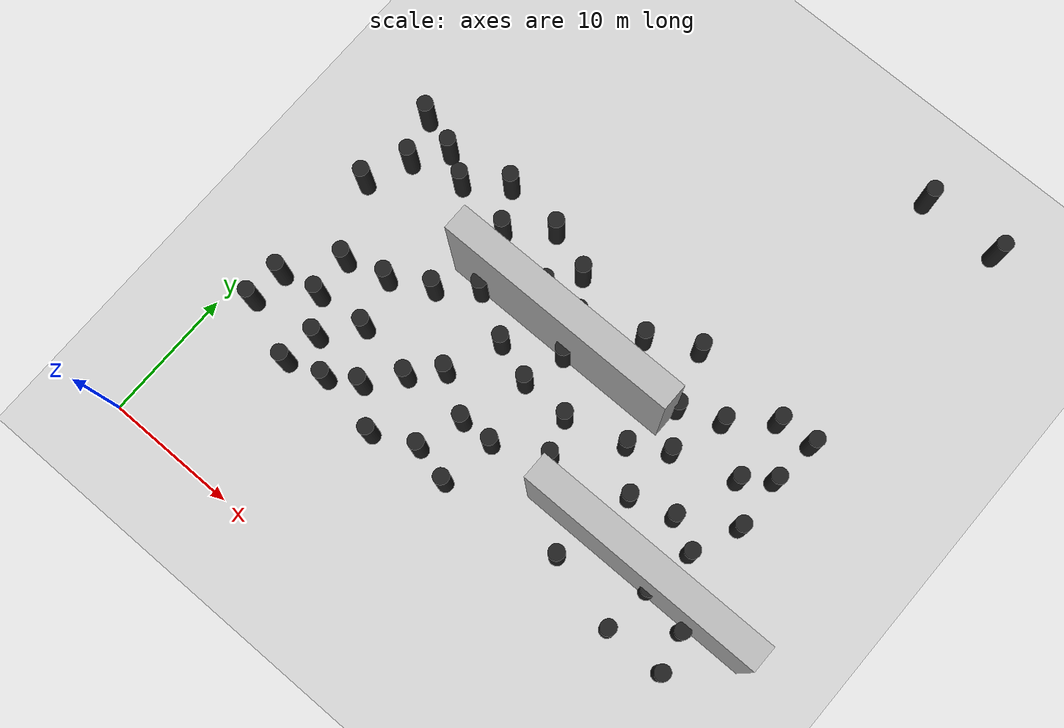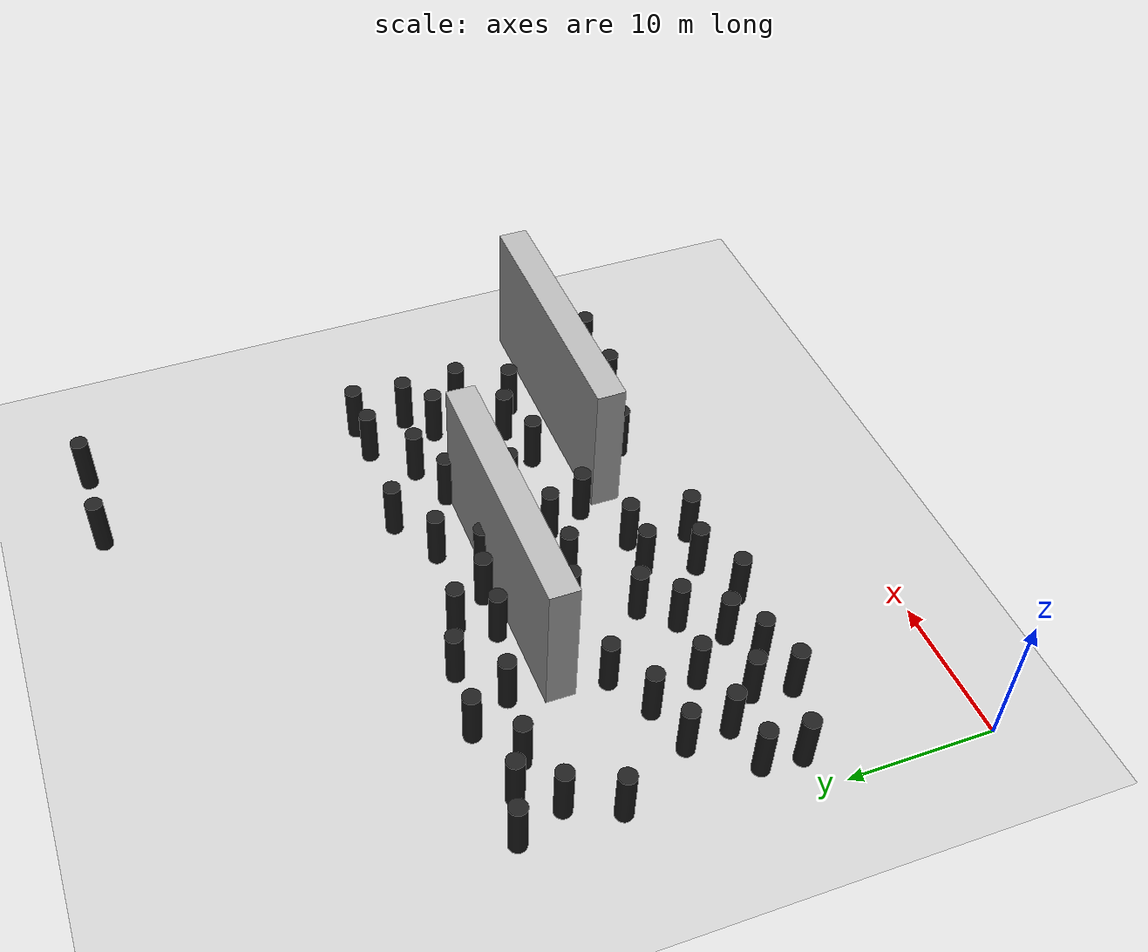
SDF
<sdf version="1.7">
 <world name="default">
  <model name="ground_plane">
   <pose>20 20 0 0 -0 0</pose>
   <static>1</static>
   <link name="link">
    <collision name="collision">
     <geometry><plane><normal>0 0 1</normal><size>200 200</size></plane></geometry>
     <surface><friction><ode><mu>100</mu><mu2>50</mu2></ode></friction></surface>
    </collision>
    <visual name="visual">
     <cast_shadows>0</cast_shadows>
     <geometry><plane><normal>0 0 1</normal><size>200 200</size></plane></geometry>
     <material>
      <script><uri>file://media/materials/scripts/gazebo.material</uri><name>Gazebo/Grey</name></script>
     </material>
    </visual>
   </link>
  </model>
  <model name="pillar_bottom_area_3">
   <static>1</static>
   <pose>5.53631 15.0345 0 0 -0 0</pose>
   <link name="link">
    <pose>0 0 2 0 -0 0</pose>
    <inertial>
     <mass>1</mass>
     <inertia><ixx>0.083</ixx><ixy>0</ixy><ixz>0</ixz><iyy>0.083</iyy><iyz>0</iyz><izz>0.083</izz></inertia>
    </inertial>
    <collision name="collision">
     <geometry><cylinder><radius>0.6</radius><length>4</length></cylinder></geometry>
    </collision>
    <visual name="visual">
     <geometry><cylinder><radius>0.6</radius><length>4</length></cylinder></geometry>
     <material>
      <script><uri>file://media/materials/scripts/gazebo.material</uri><name>Gazebo/Black</name></script>
     </material>
    </visual>
   </link>
  </model>
  <model name="pillar_bottom_area_7">
   <static>1</static>
   <pose>12.1079 12.192 0 0 -0 0</pose>
   <link name="link">
    <pose>0 0 2 0 -0 0</pose>
    <inertial>
     <mass>1</mass>
     <inertia><ixx>0.083</ixx><ixy>0</ixy><ixz>0</ixz><iyy>0.083</iyy><iyz>0</iyz><izz>0.083</izz></inertia>
    </inertial>
    <collision name="collision">
     <geometry><cylinder><radius>0.6</radius><length>4</length></cylinder></geometry>
    </collision>
    <visual name="visual">
     <geometry><cylinder><radius>0.6</radius><length>4</length></cylinder></geometry>
     <material>
      <script><uri>file://media/materials/scripts/gazebo.material</uri><name>Gazebo/Black</name></script>
     </material>
    </visual>
   </link>
  </model>
  <model name="pillar_bottom_area_9">
   <static>1</static>
   <pose>7.45141 12.7149 0 0 -0 0</pose>
   <link name="link">
    <pose>0 0 2 0 -0 0</pose>
    <inertial>
     <mass>1</mass>
     <inertia><ixx>0.083</ixx><ixy>0</ixy><ixz>0</ixz><iyy>0.083</iyy><iyz>0</iyz><izz>0.083</izz></inertia>
    </inertial>
    <collision name="collision">
     <geometry><cylinder><radius>0.6</radius><length>4</length></cylinder></geometry>
    </collision>
    <visual name="visual">
     <geometry><cylinder><radius>0.6</radius><length>4</length></cylinder></geometry>
     <material>
      <script><uri>file://media/materials/scripts/gazebo.material</uri><name>Gazebo/Black</name></script>
     </material>
    </visual>
   </link>
  </model>
  <model name="pillar_bottom_area_10">
   <static>1</static>
   <pose>13.9722 22.6188 0 0 -0 0</pose>
   <link name="link">
    <pose>0 0 2 0 -0 0</pose>
    <inertial>
     <mass>1</mass>
     <inertia><ixx>0.083</ixx><ixy>0</ixy><ixz>0</ixz><iyy>0.083</iyy><iyz>0</iyz><izz>0.083</izz></inertia>
    </inertial>
    <collision name="collision">
     <geometry><cylinder><radius>0.6</radius><length>4</length></cylinder></geometry>
    </collision>
    <visual name="visual">
     <geometry><cylinder><radius>0.6</radius><length>4</length></cylinder></geometry>
     <material>
      <script><uri>file://media/materials/scripts/gazebo.material</uri><name>Gazebo/Black</name></script>
     </material>
    </visual>
   </link>
  </model>
  <model name="pillar_bottom_area_17">
   <static>1</static>
   <pose>36.8303 17.8064 0 0 -0 0</pose>
   <link name="link">
    <pose>0 0 2 0 -0 0</pose>
    <inertial>
     <mass>1</mass>
     <inertia><ixx>0.083</ixx><ixy>0</ixy><ixz>0</ixz><iyy>0.083</iyy><iyz>0</iyz><izz>0.083</izz></inertia>
    </inertial>
    <collision name="collision">
     <geometry><cylinder><radius>0.6</radius><length>4</length></cylinder></geometry>
    </collision>
    <visual name="visual">
     <geometry><cylinder><radius>0.6</radius><length>4</length></cylinder></geometry>
     <material>
      <script><uri>file://media/materials/scripts/gazebo.material</uri><name>Gazebo/Black</name></script>
     </material>
    </visual>
   </link>
  </model>
  <model name="pillar_bottom_area_20">
   <static>1</static>
   <pose>32.8553 26.2557 0 0 -0 0</pose>
   <link name="link">
    <pose>0 0 2 0 -0 0</pose>
    <inertial>
     <mass>1</mass>
     <inertia><ixx>0.083</ixx><ixy>0</ixy><ixz>0</ixz><iyy>0.083</iyy><iyz>0</iyz><izz>0.083</izz></inertia>
    </inertial>
    <collision name="collision">
     <geometry><cylinder><radius>0.6</radius><length>4</length></cylinder></geometry>
    </collision>
    <visual name="visual">
     <geometry><cylinder><radius>0.6</radius><length>4</length></cylinder></geometry>
     <material>
      <script><uri>file://media/materials/scripts/gazebo.material</uri><name>Gazebo/Black</name></script>
     </material>
    </visual>
   </link>
  </model>
  <model name="pillar_bottom_area_21">
   <static>1</static>
   <pose>14.8298 10.0086 0 0 -0 0</pose>
   <link name="link">
    <pose>0 0 2 0 -0 0</pose>
    <inertial>
     <mass>1</mass>
     <inertia><ixx>0.083</ixx><ixy>0</ixy><ixz>0</ixz><iyy>0.083</iyy><iyz>0</iyz><izz>0.083</izz></inertia>
    </inertial>
    <collision name="collision">
     <geometry><cylinder><radius>0.6</radius><length>4</length></cylinder></geometry>
    </collision>
    <visual name="visual">
     <geometry><cylinder><radius>0.6</radius><length>4</length></cylinder></geometry>
     <material>
      <script><uri>file://media/materials/scripts/gazebo.material</uri><name>Gazebo/Black</name></script>
     </material>
    </visual>
   </link>
  </model>
  <model name="pillar_bottom_area_23">
   <static>1</static>
   <pose>3.854 26.5912 0 0 -0 0</pose>
   <link name="link">
    <pose>0 0 2 0 -0 0</pose>
    <inertial>
     <mass>1</mass>
     <inertia><ixx>0.083</ixx><ixy>0</ixy><ixz>0</ixz><iyy>0.083</iyy><iyz>0</iyz><izz>0.083</izz></inertia>
    </inertial>
    <collision name="collision">
     <geometry><cylinder><radius>0.6</radius><length>4</length></cylinder></geometry>
    </collision>
    <visual name="visual">
     <geometry><cylinder><radius>0.6</radius><length>4</length></cylinder></geometry>
     <material>
      <script><uri>file://media/materials/scripts/gazebo.material</uri><name>Gazebo/Black</name></script>
     </material>
    </visual>
   </link>
  </model>
  <model name="pillar_bottom_area_26">
   <static>1</static>
   <pose>12.2931 26.9373 0 0 -0 0</pose>
   <link name="link">
    <pose>0 0 2 0 -0 0</pose>
    <inertial>
     <mass>1</mass>
     <inertia><ixx>0.083</ixx><ixy>0</ixy><ixz>0</ixz><iyy>0.083</iyy><iyz>0</iyz><izz>0.083</izz></inertia>
    </inertial>
    <collision name="collision">
     <geometry><cylinder><radius>0.6</radius><length>4</length></cylinder></geometry>
    </collision>
    <visual name="visual">
     <geometry><cylinder><radius>0.6</radius><length>4</length></cylinder></geometry>
     <material>
      <script><uri>file://media/materials/scripts/gazebo.material</uri><name>Gazebo/Black</name></script>
     </material>
    </visual>
   </link>
  </model>
  <model name="pillar_bottom_area_31">
   <static>1</static>
   <pose>31.2459 18.0879 0 0 -0 0</pose>
   <link name="link">
    <pose>0 0 2 0 -0 0</pose>
    <inertial>
     <mass>1</mass>
     <inertia><ixx>0.083</ixx><ixy>0</ixy><ixz>0</ixz><iyy>0.083</iyy><iyz>0</iyz><izz>0.083</izz></inertia>
    </inertial>
    <collision name="collision">
     <geometry><cylinder><radius>0.6</radius><length>4</length></cylinder></geometry>
    </collision>
    <visual name="visual">
     <geometry><cylinder><radius>0.6</radius><length>4</length></cylinder></geometry>
     <material>
      <script><uri>file://media/materials/scripts/gazebo.material</uri><name>Gazebo/Black</name></script>
     </material>
    </visual>
   </link>
  </model>
  <model name="pillar_bottom_area_33">
   <static>1</static>
   <pose>36.1515 23.7987 0 0 -0 0</pose>
   <link name="link">
    <pose>0 0 2 0 -0 0</pose>
    <inertial>
     <mass>1</mass>
     <inertia><ixx>0.083</ixx><ixy>0</ixy><ixz>0</ixz><iyy>0.083</iyy><iyz>0</iyz><izz>0.083</izz></inertia>
    </inertial>
    <collision name="collision">
     <geometry><cylinder><radius>0.6</radius><length>4</length></cylinder></geometry>
    </collision>
    <visual name="visual">
     <geometry><cylinder><radius>0.6</radius><length>4</length></cylinder></geometry>
     <material>
      <script><uri>file://media/materials/scripts/gazebo.material</uri><name>Gazebo/Black</name></script>
     </material>
    </visual>
   </link>
  </model>
  <model name="pillar_bottom_area_34">
   <static>1</static>
   <pose>9.89757 10.8948 0 0 -0 0</pose>
   <link name="link">
    <pose>0 0 2 0 -0 0</pose>
    <inertial>
     <mass>1</mass>
     <inertia><ixx>0.083</ixx><ixy>0</ixy><ixz>0</ixz><iyy>0.083</iyy><iyz>0</iyz><izz>0.083</izz></inertia>
    </inertial>
    <collision name="collision">
     <geometry><cylinder><radius>0.6</radius><length>4</length></cylinder></geometry>
    </collision>
    <visual name="visual">
     <geometry><cylinder><radius>0.6</radius><length>4</length></cylinder></geometry>
     <material>
      <script><uri>file://media/materials/scripts/gazebo.material</uri><name>Gazebo/Black</name></script>
     </material>
    </visual>
   </link>
  </model>
  <model name="pillar_bottom_area_36">
   <static>1</static>
   <pose>28.8002 20.7438 0 0 -0 0</pose>
   <link name="link">
    <pose>0 0 2 0 -0 0</pose>
    <inertial>
     <mass>1</mass>
     <inertia><ixx>0.083</ixx><ixy>0</ixy><ixz>0</ixz><iyy>0.083</iyy><iyz>0</iyz><izz>0.083</izz></inertia>
    </inertial>
    <collision name="collision">
     <geometry><cylinder><radius>0.6</radius><length>4</length></cylinder></geometry>
    </collision>
    <visual name="visual">
     <geometry><cylinder><radius>0.6</radius><length>4</length></cylinder></geometry>
     <material>
      <script><uri>file://media/materials/scripts/gazebo.material</uri><name>Gazebo/Black</name></script>
     </material>
    </visual>
   </link>
  </model>
  <model name="pillar_bottom_area_38">
   <static>1</static>
   <pose>24.9449 27.302 0 0 -0 0</pose>
   <link name="link">
    <pose>0 0 2 0 -0 0</pose>
    <inertial>
     <mass>1</mass>
     <inertia><ixx>0.083</ixx><ixy>0</ixy><ixz>0</ixz><iyy>0.083</iyy><iyz>0</iyz><izz>0.083</izz></inertia>
    </inertial>
    <collision name="collision">
     <geometry><cylinder><radius>0.6</radius><length>4</length></cylinder></geometry>
    </collision>
    <visual name="visual">
     <geometry><cylinder><radius>0.6</radius><length>4</length></cylinder></geometry>
     <material>
      <script><uri>file://media/materials/scripts/gazebo.material</uri><name>Gazebo/Black</name></script>
     </material>
    </visual>
   </link>
  </model>
  <model name="pillar_bottom_area_45">
   <static>1</static>
   <pose>15.9666 16.6266 0 0 -0 0</pose>
   <link name="link">
    <pose>0 0 2 0 -0 0</pose>
    <inertial>
     <mass>1</mass>
     <inertia><ixx>0.083</ixx><ixy>0</ixy><ixz>0</ixz><iyy>0.083</iyy><iyz>0</iyz><izz>0.083</izz></inertia>
    </inertial>
    <collision name="collision">
     <geometry><cylinder><radius>0.6</radius><length>4</length></cylinder></geometry>
    </collision>
    <visual name="visual">
     <geometry><cylinder><radius>0.6</radius><length>4</length></cylinder></geometry>
     <material>
      <script><uri>file://media/materials/scripts/gazebo.material</uri><name>Gazebo/Black</name></script>
     </material>
    </visual>
   </link>
  </model>
  <model name="pillar_bottom_area_53">
   <static>1</static>
   <pose>5.26437 18.1103 0 0 -0 0</pose>
   <link name="link">
    <pose>0 0 2 0 -0 0</pose>
    <inertial>
     <mass>1</mass>
     <inertia><ixx>0.083</ixx><ixy>0</ixy><ixz>0</ixz><iyy>0.083</iyy><iyz>0</iyz><izz>0.083</izz></inertia>
    </inertial>
    <collision name="collision">
     <geometry><cylinder><radius>0.6</radius><length>4</length></cylinder></geometry>
    </collision>
    <visual name="visual">
     <geometry><cylinder><radius>0.6</radius><length>4</length></cylinder></geometry>
     <material>
      <script><uri>file://media/materials/scripts/gazebo.material</uri><name>Gazebo/Black</name></script>
     </material>
    </visual>
   </link>
  </model>
  <model name="pillar_bottom_area_58">
   <static>1</static>
   <pose>28.4703 29.1955 0 0 -0 0</pose>
   <link name="link">
    <pose>0 0 2 0 -0 0</pose>
    <inertial>
     <mass>1</mass>
     <inertia><ixx>0.083</ixx><ixy>0</ixy><ixz>0</ixz><iyy>0.083</iyy><iyz>0</iyz><izz>0.083</izz></inertia>
    </inertial>
    <collision name="collision">
     <geometry><cylinder><radius>0.6</radius><length>4</length></cylinder></geometry>
    </collision>
    <visual name="visual">
     <geometry><cylinder><radius>0.6</radius><length>4</length></cylinder></geometry>
     <material>
      <script><uri>file://media/materials/scripts/gazebo.material</uri><name>Gazebo/Black</name></script>
     </material>
    </visual>
   </link>
  </model>
  <model name="pillar_bottom_area_62">
   <static>1</static>
   <pose>34.4594 19.0427 0 0 -0 0</pose>
   <link name="link">
    <pose>0 0 2 0 -0 0</pose>
    <inertial>
     <mass>1</mass>
     <inertia><ixx>0.083</ixx><ixy>0</ixy><ixz>0</ixz><iyy>0.083</iyy><iyz>0</iyz><izz>0.083</izz></inertia>
    </inertial>
    <collision name="collision">
     <geometry><cylinder><radius>0.6</radius><length>4</length></cylinder></geometry>
    </collision>
    <visual name="visual">
     <geometry><cylinder><radius>0.6</radius><length>4</length></cylinder></geometry>
     <material>
      <script><uri>file://media/materials/scripts/gazebo.material</uri><name>Gazebo/Black</name></script>
     </material>
    </visual>
   </link>
  </model>
  <model name="pillar_bottom_area_68">
   <static>1</static>
   <pose>40.3801 10.4171 0 0 -0 0</pose>
   <link name="link">
    <pose>0 0 2 0 -0 0</pose>
    <inertial>
     <mass>1</mass>
     <inertia><ixx>0.083</ixx><ixy>0</ixy><ixz>0</ixz><iyy>0.083</iyy><iyz>0</iyz><izz>0.083</izz></inertia>
    </inertial>
    <collision name="collision">
     <geometry><cylinder><radius>0.6</radius><length>4</length></cylinder></geometry>
    </collision>
    <visual name="visual">
     <geometry><cylinder><radius>0.6</radius><length>4</length></cylinder></geometry>
     <material>
      <script><uri>file://media/materials/scripts/gazebo.material</uri><name>Gazebo/Black</name></script>
     </material>
    </visual>
   </link>
  </model>
  <model name="pillar_bottom_area_69">
   <static>1</static>
   <pose>24.3535 19.4692 0 0 -0 0</pose>
   <link name="link">
    <pose>0 0 2 0 -0 0</pose>
    <inertial>
     <mass>1</mass>
     <inertia><ixx>0.083</ixx><ixy>0</ixy><ixz>0</ixz><iyy>0.083</iyy><iyz>0</iyz><izz>0.083</izz></inertia>
    </inertial>
    <collision name="collision">
     <geometry><cylinder><radius>0.6</radius><length>4</length></cylinder></geometry>
    </collision>
    <visual name="visual">
     <geometry><cylinder><radius>0.6</radius><length>4</length></cylinder></geometry>
     <material>
      <script><uri>file://media/materials/scripts/gazebo.material</uri><name>Gazebo/Black</name></script>
     </material>
    </visual>
   </link>
  </model>
  <model name="pillar_bottom_area_72">
   <static>1</static>
   <pose>2.23521 11.8092 0 0 -0 0</pose>
   <link name="link">
    <pose>0 0 2 0 -0 0</pose>
    <inertial>
     <mass>1</mass>
     <inertia><ixx>0.083</ixx><ixy>0</ixy><ixz>0</ixz><iyy>0.083</iyy><iyz>0</iyz><izz>0.083</izz></inertia>
    </inertial>
    <collision name="collision">
     <geometry><cylinder><radius>0.6</radius><length>4</length></cylinder></geometry>
    </collision>
    <visual name="visual">
     <geometry><cylinder><radius>0.6</radius><length>4</length></cylinder></geometry>
     <material>
      <script><uri>file://media/materials/scripts/gazebo.material</uri><name>Gazebo/Black</name></script>
     </material>
    </visual>
   </link>
  </model>
  <model name="pillar_bottom_area_75">
   <static>1</static>
   <pose>17.5697 20.6576 0 0 -0 0</pose>
   <link name="link">
    <pose>0 0 2 0 -0 0</pose>
    <inertial>
     <mass>1</mass>
     <inertia><ixx>0.083</ixx><ixy>0</ixy><ixz>0</ixz><iyy>0.083</iyy><iyz>0</iyz><izz>0.083</izz></inertia>
    </inertial>
    <collision name="collision">
     <geometry><cylinder><radius>0.6</radius><length>4</length></cylinder></geometry>
    </collision>
    <visual name="visual">
     <geometry><cylinder><radius>0.6</radius><length>4</length></cylinder></geometry>
     <material>
      <script><uri>file://media/materials/scripts/gazebo.material</uri><name>Gazebo/Black</name></script>
     </material>
    </visual>
   </link>
  </model>
  <model name="pillar_bottom_area_87">
   <static>1</static>
   <pose>32.4622 15.0808 0 0 -0 0</pose>
   <link name="link">
    <pose>0 0 2 0 -0 0</pose>
    <inertial>
     <mass>1</mass>
     <inertia><ixx>0.083</ixx><ixy>0</ixy><ixz>0</ixz><iyy>0.083</iyy><iyz>0</iyz><izz>0.083</izz></inertia>
    </inertial>
    <collision name="collision">
     <geometry><cylinder><radius>0.6</radius><length>4</length></cylinder></geometry>
    </collision>
    <visual name="visual">
     <geometry><cylinder><radius>0.6</radius><length>4</length></cylinder></geometry>
     <material>
      <script><uri>file://media/materials/scripts/gazebo.material</uri><name>Gazebo/Black</name></script>
     </material>
    </visual>
   </link>
  </model>
  <model name="pillar_bottom_area_88">
   <static>1</static>
   <pose>21.6308 14.827 0 0 -0 0</pose>
   <link name="link">
    <pose>0 0 2 0 -0 0</pose>
    <inertial>
     <mass>1</mass>
     <inertia><ixx>0.083</ixx><ixy>0</ixy><ixz>0</ixz><iyy>0.083</iyy><iyz>0</iyz><izz>0.083</izz></inertia>
    </inertial>
    <collision name="collision">
     <geometry><cylinder><radius>0.6</radius><length>4</length></cylinder></geometry>
    </collision>
    <visual name="visual">
     <geometry><cylinder><radius>0.6</radius><length>4</length></cylinder></geometry>
     <material>
      <script><uri>file://media/materials/scripts/gazebo.material</uri><name>Gazebo/Black</name></script>
     </material>
    </visual>
   </link>
  </model>
  <model name="pillar_bottom_area_90">
   <static>1</static>
   <pose>35.8317 10.3628 0 0 -0 0</pose>
   <link name="link">
    <pose>0 0 2 0 -0 0</pose>
    <inertial>
     <mass>1</mass>
     <inertia><ixx>0.083</ixx><ixy>0</ixy><ixz>0</ixz><iyy>0.083</iyy><iyz>0</iyz><izz>0.083</izz></inertia>
    </inertial>
    <collision name="collision">
     <geometry><cylinder><radius>0.6</radius><length>4</length></cylinder></geometry>
    </collision>
    <visual name="visual">
     <geometry><cylinder><radius>0.6</radius><length>4</length></cylinder></geometry>
     <material>
      <script><uri>file://media/materials/scripts/gazebo.material</uri><name>Gazebo/Black</name></script>
     </material>
    </visual>
   </link>
  </model>
  <model name="pillar_bottom_area_94">
   <static>1</static>
   <pose>10.6033 29.8061 0 0 -0 0</pose>
   <link name="link">
    <pose>0 0 2 0 -0 0</pose>
    <inertial>
     <mass>1</mass>
     <inertia><ixx>0.083</ixx><ixy>0</ixy><ixz>0</ixz><iyy>0.083</iyy><iyz>0</iyz><izz>0.083</izz></inertia>
    </inertial>
    <collision name="collision">
     <geometry><cylinder><radius>0.6</radius><length>4</length></cylinder></geometry>
    </collision>
    <visual name="visual">
     <geometry><cylinder><radius>0.6</radius><length>4</length></cylinder></geometry>
     <material>
      <script><uri>file://media/materials/scripts/gazebo.material</uri><name>Gazebo/Black</name></script>
     </material>
    </visual>
   </link>
  </model>
  <model name="pillar_bottom_area_95">
   <static>1</static>
   <pose>2.48112 14.4852 0 0 -0 0</pose>
   <link name="link">
    <pose>0 0 2 0 -0 0</pose>
    <inertial>
     <mass>1</mass>
     <inertia><ixx>0.083</ixx><ixy>0</ixy><ixz>0</ixz><iyy>0.083</iyy><iyz>0</iyz><izz>0.083</izz></inertia>
    </inertial>
    <collision name="collision">
     <geometry><cylinder><radius>0.6</radius><length>4</length></cylinder></geometry>
    </collision>
    <visual name="visual">
     <geometry><cylinder><radius>0.6</radius><length>4</length></cylinder></geometry>
     <material>
      <script><uri>file://media/materials/scripts/gazebo.material</uri><name>Gazebo/Black</name></script>
     </material>
    </visual>
   </link>
  </model>
  <model name="pillar_bottom_area_102">
   <static>1</static>
   <pose>26.8252 14.6273 0 0 -0 0</pose>
   <link name="link">
    <pose>0 0 2 0 -0 0</pose>
    <inertial>
     <mass>1</mass>
     <inertia><ixx>0.083</ixx><ixy>0</ixy><ixz>0</ixz><iyy>0.083</iyy><iyz>0</iyz><izz>0.083</izz></inertia>
    </inertial>
    <collision name="collision">
     <geometry><cylinder><radius>0.6</radius><length>4</length></cylinder></geometry>
    </collision>
    <visual name="visual">
     <geometry><cylinder><radius>0.6</radius><length>4</length></cylinder></geometry>
     <material>
      <script><uri>file://media/materials/scripts/gazebo.material</uri><name>Gazebo/Black</name></script>
     </material>
    </visual>
   </link>
  </model>
  <model name="pillar_bottom_area_105">
   <static>1</static>
   <pose>36.2206 14.0331 0 0 -0 0</pose>
   <link name="link">
    <pose>0 0 2 0 -0 0</pose>
    <inertial>
     <mass>1</mass>
     <inertia><ixx>0.083</ixx><ixy>0</ixy><ixz>0</ixz><iyy>0.083</iyy><iyz>0</iyz><izz>0.083</izz></inertia>
    </inertial>
    <collision name="collision">
     <geometry><cylinder><radius>0.6</radius><length>4</length></cylinder></geometry>
    </collision>
    <visual name="visual">
     <geometry><cylinder><radius>0.6</radius><length>4</length></cylinder></geometry>
     <material>
      <script><uri>file://media/materials/scripts/gazebo.material</uri><name>Gazebo/Black</name></script>
     </material>
    </visual>
   </link>
  </model>
  <model name="pillar_bottom_area_110">
   <static>1</static>
   <pose>8.42267 18.9681 0 0 -0 0</pose>
   <link name="link">
    <pose>0 0 2 0 -0 0</pose>
    <inertial>
     <mass>1</mass>
     <inertia><ixx>0.083</ixx><ixy>0</ixy><ixz>0</ixz><iyy>0.083</iyy><iyz>0</iyz><izz>0.083</izz></inertia>
    </inertial>
    <collision name="collision">
     <geometry><cylinder><radius>0.6</radius><length>4</length></cylinder></geometry>
    </collision>
    <visual name="visual">
     <geometry><cylinder><radius>0.6</radius><length>4</length></cylinder></geometry>
     <material>
      <script><uri>file://media/materials/scripts/gazebo.material</uri><name>Gazebo/Black</name></script>
     </material>
    </visual>
   </link>
  </model>
  <model name="pillar_bottom_area_115">
   <static>1</static>
   <pose>18.7174 28.0793 0 0 -0 0</pose>
   <link name="link">
    <pose>0 0 2 0 -0 0</pose>
    <inertial>
     <mass>1</mass>
     <inertia><ixx>0.083</ixx><ixy>0</ixy><ixz>0</ixz><iyy>0.083</iyy><iyz>0</iyz><izz>0.083</izz></inertia>
    </inertial>
    <collision name="collision">
     <geometry><cylinder><radius>0.6</radius><length>4</length></cylinder></geometry>
    </collision>
    <visual name="visual">
     <geometry><cylinder><radius>0.6</radius><length>4</length></cylinder></geometry>
     <material>
      <script><uri>file://media/materials/scripts/gazebo.material</uri><name>Gazebo/Black</name></script>
     </material>
    </visual>
   </link>
  </model>
  <model name="pillar_bottom_area_121">
   <static>1</static>
   <pose>38.479 28.9676 0 0 -0 0</pose>
   <link name="link">
    <pose>0 0 2 0 -0 0</pose>
    <inertial>
     <mass>1</mass>
     <inertia><ixx>0.083</ixx><ixy>0</ixy><ixz>0</ixz><iyy>0.083</iyy><iyz>0</iyz><izz>0.083</izz></inertia>
    </inertial>
    <collision name="collision">
     <geometry><cylinder><radius>0.6</radius><length>4</length></cylinder></geometry>
    </collision>
    <visual name="visual">
     <geometry><cylinder><radius>0.6</radius><length>4</length></cylinder></geometry>
     <material>
      <script><uri>file://media/materials/scripts/gazebo.material</uri><name>Gazebo/Black</name></script>
     </material>
    </visual>
   </link>
  </model>
  <model name="pillar_bottom_area_128">
   <static>1</static>
   <pose>20.9316 10.7543 0 0 -0 0</pose>
   <link name="link">
    <pose>0 0 2 0 -0 0</pose>
    <inertial>
     <mass>1</mass>
     <inertia><ixx>0.083</ixx><ixy>0</ixy><ixz>0</ixz><iyy>0.083</iyy><iyz>0</iyz><izz>0.083</izz></inertia>
    </inertial>
    <collision name="collision">
     <geometry><cylinder><radius>0.6</radius><length>4</length></cylinder></geometry>
    </collision>
    <visual name="visual">
     <geometry><cylinder><radius>0.6</radius><length>4</length></cylinder></geometry>
     <material>
      <script><uri>file://media/materials/scripts/gazebo.material</uri><name>Gazebo/Black</name></script>
     </material>
    </visual>
   </link>
  </model>
  <model name="pillar_bottom_area_147">
   <static>1</static>
   <pose>6.96849 10.0197 0 0 -0 0</pose>
   <link name="link">
    <pose>0 0 2 0 -0 0</pose>
    <inertial>
     <mass>1</mass>
     <inertia><ixx>0.083</ixx><ixy>0</ixy><ixz>0</ixz><iyy>0.083</iyy><iyz>0</iyz><izz>0.083</izz></inertia>
    </inertial>
    <collision name="collision">
     <geometry><cylinder><radius>0.6</radius><length>4</length></cylinder></geometry>
    </collision>
    <visual name="visual">
     <geometry><cylinder><radius>0.6</radius><length>4</length></cylinder></geometry>
     <material>
      <script><uri>file://media/materials/scripts/gazebo.material</uri><name>Gazebo/Black</name></script>
     </material>
    </visual>
   </link>
  </model>
  <model name="pillar_bottom_area_148">
   <static>1</static>
   <pose>22.9192 24.7777 0 0 -0 0</pose>
   <link name="link">
    <pose>0 0 2 0 -0 0</pose>
    <inertial>
     <mass>1</mass>
     <inertia><ixx>0.083</ixx><ixy>0</ixy><ixz>0</ixz><iyy>0.083</iyy><iyz>0</iyz><izz>0.083</izz></inertia>
    </inertial>
    <collision name="collision">
     <geometry><cylinder><radius>0.6</radius><length>4</length></cylinder></geometry>
    </collision>
    <visual name="visual">
     <geometry><cylinder><radius>0.6</radius><length>4</length></cylinder></geometry>
     <material>
      <script><uri>file://media/materials/scripts/gazebo.material</uri><name>Gazebo/Black</name></script>
     </material>
    </visual>
   </link>
  </model>
  <model name="pillar_bottom_area_153">
   <static>1</static>
   <pose>29.8186 24.9785 0 0 -0 0</pose>
   <link name="link">
    <pose>0 0 2 0 -0 0</pose>
    <inertial>
     <mass>1</mass>
     <inertia><ixx>0.083</ixx><ixy>0</ixy><ixz>0</ixz><iyy>0.083</iyy><iyz>0</iyz><izz>0.083</izz></inertia>
    </inertial>
    <collision name="collision">
     <geometry><cylinder><radius>0.6</radius><length>4</length></cylinder></geometry>
    </collision>
    <visual name="visual">
     <geometry><cylinder><radius>0.6</radius><length>4</length></cylinder></geometry>
     <material>
      <script><uri>file://media/materials/scripts/gazebo.material</uri><name>Gazebo/Black</name></script>
     </material>
    </visual>
   </link>
  </model>
  <model name="pillar_bottom_area_179">
   <static>1</static>
   <pose>2.65629 29.849 0 0 -0 0</pose>
   <link name="link">
    <pose>0 0 2 0 -0 0</pose>
    <inertial>
     <mass>1</mass>
     <inertia><ixx>0.083</ixx><ixy>0</ixy><ixz>0</ixz><iyy>0.083</iyy><iyz>0</iyz><izz>0.083</izz></inertia>
    </inertial>
    <collision name="collision">
     <geometry><cylinder><radius>0.6</radius><length>4</length></cylinder></geometry>
    </collision>
    <visual name="visual">
     <geometry><cylinder><radius>0.6</radius><length>4</length></cylinder></geometry>
     <material>
      <script><uri>file://media/materials/scripts/gazebo.material</uri><name>Gazebo/Black</name></script>
     </material>
    </visual>
   </link>
  </model>
  <model name="pillar_bottom_area_183">
   <static>1</static>
   <pose>38.1234 25.4026 0 0 -0 0</pose>
   <link name="link">
    <pose>0 0 2 0 -0 0</pose>
    <inertial>
     <mass>1</mass>
     <inertia><ixx>0.083</ixx><ixy>0</ixy><ixz>0</ixz><iyy>0.083</iyy><iyz>0</iyz><izz>0.083</izz></inertia>
    </inertial>
    <collision name="collision">
     <geometry><cylinder><radius>0.6</radius><length>4</length></cylinder></geometry>
    </collision>
    <visual name="visual">
     <geometry><cylinder><radius>0.6</radius><length>4</length></cylinder></geometry>
     <material>
      <script><uri>file://media/materials/scripts/gazebo.material</uri><name>Gazebo/Black</name></script>
     </material>
    </visual>
   </link>
  </model>
  <model name="pillar_bottom_area_196">
   <static>1</static>
   <pose>17.3124 25.7435 0 0 -0 0</pose>
   <link name="link">
    <pose>0 0 2 0 -0 0</pose>
    <inertial>
     <mass>1</mass>
     <inertia><ixx>0.083</ixx><ixy>0</ixy><ixz>0</ixz><iyy>0.083</iyy><iyz>0</iyz><izz>0.083</izz></inertia>
    </inertial>
    <collision name="collision">
     <geometry><cylinder><radius>0.6</radius><length>4</length></cylinder></geometry>
    </collision>
    <visual name="visual">
     <geometry><cylinder><radius>0.6</radius><length>4</length></cylinder></geometry>
     <material>
      <script><uri>file://media/materials/scripts/gazebo.material</uri><name>Gazebo/Black</name></script>
     </material>
    </visual>
   </link>
  </model>
  <model name="pillar_bottom_area_207">
   <static>1</static>
   <pose>7.76475 27.6449 0 0 -0 0</pose>
   <link name="link">
    <pose>0 0 2 0 -0 0</pose>
    <inertial>
     <mass>1</mass>
     <inertia><ixx>0.083</ixx><ixy>0</ixy><ixz>0</ixz><iyy>0.083</iyy><iyz>0</iyz><izz>0.083</izz></inertia>
    </inertial>
    <collision name="collision">
     <geometry><cylinder><radius>0.6</radius><length>4</length></cylinder></geometry>
    </collision>
    <visual name="visual">
     <geometry><cylinder><radius>0.6</radius><length>4</length></cylinder></geometry>
     <material>
      <script><uri>file://media/materials/scripts/gazebo.material</uri><name>Gazebo/Black</name></script>
     </material>
    </visual>
   </link>
  </model>
  <model name="pillar_bottom_area_211">
   <static>1</static>
   <pose>15.2232 29.3131 0 0 -0 0</pose>
   <link name="link">
    <pose>0 0 2 0 -0 0</pose>
    <inertial>
     <mass>1</mass>
     <inertia><ixx>0.083</ixx><ixy>0</ixy><ixz>0</ixz><iyy>0.083</iyy><iyz>0</iyz><izz>0.083</izz></inertia>
    </inertial>
    <collision name="collision">
     <geometry><cylinder><radius>0.6</radius><length>4</length></cylinder></geometry>
    </collision>
    <visual name="visual">
     <geometry><cylinder><radius>0.6</radius><length>4</length></cylinder></geometry>
     <material>
      <script><uri>file://media/materials/scripts/gazebo.material</uri><name>Gazebo/Black</name></script>
     </material>
    </visual>
   </link>
  </model>
  <model name="pillar_bottom_area_218">
   <static>1</static>
   <pose>9.55078 15.362 0 0 -0 0</pose>
   <link name="link">
    <pose>0 0 2 0 -0 0</pose>
    <inertial>
     <mass>1</mass>
     <inertia><ixx>0.083</ixx><ixy>0</ixy><ixz>0</ixz><iyy>0.083</iyy><iyz>0</iyz><izz>0.083</izz></inertia>
    </inertial>
    <collision name="collision">
     <geometry><cylinder><radius>0.6</radius><length>4</length></cylinder></geometry>
    </collision>
    <visual name="visual">
     <geometry><cylinder><radius>0.6</radius><length>4</length></cylinder></geometry>
     <material>
      <script><uri>file://media/materials/scripts/gazebo.material</uri><name>Gazebo/Black</name></script>
     </material>
    </visual>
   </link>
  </model>
  <model name="pillar_bottom_area_224">
   <static>1</static>
   <pose>20.4902 25.5845 0 0 -0 0</pose>
   <link name="link">
    <pose>0 0 2 0 -0 0</pose>
    <inertial>
     <mass>1</mass>
     <inertia><ixx>0.083</ixx><ixy>0</ixy><ixz>0</ixz><iyy>0.083</iyy><iyz>0</iyz><izz>0.083</izz></inertia>
    </inertial>
    <collision name="collision">
     <geometry><cylinder><radius>0.6</radius><length>4</length></cylinder></geometry>
    </collision>
    <visual name="visual">
     <geometry><cylinder><radius>0.6</radius><length>4</length></cylinder></geometry>
     <material>
      <script><uri>file://media/materials/scripts/gazebo.material</uri><name>Gazebo/Black</name></script>
     </material>
    </visual>
   </link>
  </model>
  <model name="pillar_bottom_area_257">
   <static>1</static>
   <pose>38.3071 21.3641 0 0 -0 0</pose>
   <link name="link">
    <pose>0 0 2 0 -0 0</pose>
    <inertial>
     <mass>1</mass>
     <inertia><ixx>0.083</ixx><ixy>0</ixy><ixz>0</ixz><iyy>0.083</iyy><iyz>0</iyz><izz>0.083</izz></inertia>
    </inertial>
    <collision name="collision">
     <geometry><cylinder><radius>0.6</radius><length>4</length></cylinder></geometry>
    </collision>
    <visual name="visual">
     <geometry><cylinder><radius>0.6</radius><length>4</length></cylinder></geometry>
     <material>
      <script><uri>file://media/materials/scripts/gazebo.material</uri><name>Gazebo/Black</name></script>
     </material>
    </visual>
   </link>
  </model>
  <model name="pillar_bottom_area_261">
   <static>1</static>
   <pose>25.3391 16.7704 0 0 -0 0</pose>
   <link name="link">
    <pose>0 0 2 0 -0 0</pose>
    <inertial>
     <mass>1</mass>
     <inertia><ixx>0.083</ixx><ixy>0</ixy><ixz>0</ixz><iyy>0.083</iyy><iyz>0</iyz><izz>0.083</izz></inertia>
    </inertial>
    <collision name="collision">
     <geometry><cylinder><radius>0.6</radius><length>4</length></cylinder></geometry>
    </collision>
    <visual name="visual">
     <geometry><cylinder><radius>0.6</radius><length>4</length></cylinder></geometry>
     <material>
      <script><uri>file://media/materials/scripts/gazebo.material</uri><name>Gazebo/Black</name></script>
     </material>
    </visual>
   </link>
  </model>
  <model name="pillar_bottom_area_268">
   <static>1</static>
   <pose>21.4477 22.7489 0 0 -0 0</pose>
   <link name="link">
    <pose>0 0 2 0 -0 0</pose>
    <inertial>
     <mass>1</mass>
     <inertia><ixx>0.083</ixx><ixy>0</ixy><ixz>0</ixz><iyy>0.083</iyy><iyz>0</iyz><izz>0.083</izz></inertia>
    </inertial>
    <collision name="collision">
     <geometry><cylinder><radius>0.6</radius><length>4</length></cylinder></geometry>
    </collision>
    <visual name="visual">
     <geometry><cylinder><radius>0.6</radius><length>4</length></cylinder></geometry>
     <material>
      <script><uri>file://media/materials/scripts/gazebo.material</uri><name>Gazebo/Black</name></script>
     </material>
    </visual>
   </link>
  </model>
  <model name="pillar_bottom_area_269">
   <static>1</static>
   <pose>11.4034 20.5643 0 0 -0 0</pose>
   <link name="link">
    <pose>0 0 2 0 -0 0</pose>
    <inertial>
     <mass>1</mass>
     <inertia><ixx>0.083</ixx><ixy>0</ixy><ixz>0</ixz><iyy>0.083</iyy><iyz>0</iyz><izz>0.083</izz></inertia>
    </inertial>
    <collision name="collision">
     <geometry><cylinder><radius>0.6</radius><length>4</length></cylinder></geometry>
    </collision>
    <visual name="visual">
     <geometry><cylinder><radius>0.6</radius><length>4</length></cylinder></geometry>
     <material>
      <script><uri>file://media/materials/scripts/gazebo.material</uri><name>Gazebo/Black</name></script>
     </material>
    </visual>
   </link>
  </model>
  <model name="pillar_bottom_area_277">
   <static>1</static>
   <pose>30.0757 11.8976 0 0 -0 0</pose>
   <link name="link">
    <pose>0 0 2 0 -0 0</pose>
    <inertial>
     <mass>1</mass>
     <inertia><ixx>0.083</ixx><ixy>0</ixy><ixz>0</ixz><iyy>0.083</iyy><iyz>0</iyz><izz>0.083</izz></inertia>
    </inertial>
    <collision name="collision">
     <geometry><cylinder><radius>0.6</radius><length>4</length></cylinder></geometry>
    </collision>
    <visual name="visual">
     <geometry><cylinder><radius>0.6</radius><length>4</length></cylinder></geometry>
     <material>
      <script><uri>file://media/materials/scripts/gazebo.material</uri><name>Gazebo/Black</name></script>
     </material>
    </visual>
   </link>
  </model>
  <model name="pillar_bottom_area_279">
   <static>1</static>
   <pose>5.54581 28.9329 0 0 -0 0</pose>
   <link name="link">
    <pose>0 0 2 0 -0 0</pose>
    <inertial>
     <mass>1</mass>
     <inertia><ixx>0.083</ixx><ixy>0</ixy><ixz>0</ixz><iyy>0.083</iyy><iyz>0</iyz><izz>0.083</izz></inertia>
    </inertial>
    <collision name="collision">
     <geometry><cylinder><radius>0.6</radius><length>4</length></cylinder></geometry>
    </collision>
    <visual name="visual">
     <geometry><cylinder><radius>0.6</radius><length>4</length></cylinder></geometry>
     <material>
      <script><uri>file://media/materials/scripts/gazebo.material</uri><name>Gazebo/Black</name></script>
     </material>
    </visual>
   </link>
  </model>
  <model name="pillar_bottom_area_282">
   <static>1</static>
   <pose>39.6729 13.3446 0 0 -0 0</pose>
   <link name="link">
    <pose>0 0 2 0 -0 0</pose>
    <inertial>
     <mass>1</mass>
     <inertia><ixx>0.083</ixx><ixy>0</ixy><ixz>0</ixz><iyy>0.083</iyy><iyz>0</iyz><izz>0.083</izz></inertia>
    </inertial>
    <collision name="collision">
     <geometry><cylinder><radius>0.6</radius><length>4</length></cylinder></geometry>
    </collision>
    <visual name="visual">
     <geometry><cylinder><radius>0.6</radius><length>4</length></cylinder></geometry>
     <material>
      <script><uri>file://media/materials/scripts/gazebo.material</uri><name>Gazebo/Black</name></script>
     </material>
    </visual>
   </link>
  </model>
  <model name="pillar_bottom_area_293">
   <static>1</static>
   <pose>35.7548 28.7304 0 0 -0 0</pose>
   <link name="link">
    <pose>0 0 2 0 -0 0</pose>
    <inertial>
     <mass>1</mass>
     <inertia><ixx>0.083</ixx><ixy>0</ixy><ixz>0</ixz><iyy>0.083</iyy><iyz>0</iyz><izz>0.083</izz></inertia>
    </inertial>
    <collision name="collision">
     <geometry><cylinder><radius>0.6</radius><length>4</length></cylinder></geometry>
    </collision>
    <visual name="visual">
     <geometry><cylinder><radius>0.6</radius><length>4</length></cylinder></geometry>
     <material>
      <script><uri>file://media/materials/scripts/gazebo.material</uri><name>Gazebo/Black</name></script>
     </material>
    </visual>
   </link>
  </model>
  <model name="pillar_bottom_area_295">
   <static>1</static>
   <pose>2.42832 23.3418 0 0 -0 0</pose>
   <link name="link">
    <pose>0 0 2 0 -0 0</pose>
    <inertial>
     <mass>1</mass>
     <inertia><ixx>0.083</ixx><ixy>0</ixy><ixz>0</ixz><iyy>0.083</iyy><iyz>0</iyz><izz>0.083</izz></inertia>
    </inertial>
    <collision name="collision">
     <geometry><cylinder><radius>0.6</radius><length>4</length></cylinder></geometry>
    </collision>
    <visual name="visual">
     <geometry><cylinder><radius>0.6</radius><length>4</length></cylinder></geometry>
     <material>
      <script><uri>file://media/materials/scripts/gazebo.material</uri><name>Gazebo/Black</name></script>
     </material>
    </visual>
   </link>
  </model>
  <model name="pillar_bottom_area_301">
   <static>1</static>
   <pose>14.0938 14.621 0 0 -0 0</pose>
   <link name="link">
    <pose>0 0 2 0 -0 0</pose>
    <inertial>
     <mass>1</mass>
     <inertia><ixx>0.083</ixx><ixy>0</ixy><ixz>0</ixz><iyy>0.083</iyy><iyz>0</iyz><izz>0.083</izz></inertia>
    </inertial>
    <collision name="collision">
     <geometry><cylinder><radius>0.6</radius><length>4</length></cylinder></geometry>
    </collision>
    <visual name="visual">
     <geometry><cylinder><radius>0.6</radius><length>4</length></cylinder></geometry>
     <material>
      <script><uri>file://media/materials/scripts/gazebo.material</uri><name>Gazebo/Black</name></script>
     </material>
    </visual>
   </link>
  </model>
  <model name="pillar_bottom_area_335">
   <static>1</static>
   <pose>20.6207 19.6022 0 0 -0 0</pose>
   <link name="link">
    <pose>0 0 2 0 -0 0</pose>
    <inertial>
     <mass>1</mass>
     <inertia><ixx>0.083</ixx><ixy>0</ixy><ixz>0</ixz><iyy>0.083</iyy><iyz>0</iyz><izz>0.083</izz></inertia>
    </inertial>
    <collision name="collision">
     <geometry><cylinder><radius>0.6</radius><length>4</length></cylinder></geometry>
    </collision>
    <visual name="visual">
     <geometry><cylinder><radius>0.6</radius><length>4</length></cylinder></geometry>
     <material>
      <script><uri>file://media/materials/scripts/gazebo.material</uri><name>Gazebo/Black</name></script>
     </material>
    </visual>
   </link>
  </model>
  <model name="pillar_bottom_area_341">
   <static>1</static>
   <pose>18.07 11.4331 0 0 -0 0</pose>
   <link name="link">
    <pose>0 0 2 0 -0 0</pose>
    <inertial>
     <mass>1</mass>
     <inertia><ixx>0.083</ixx><ixy>0</ixy><ixz>0</ixz><iyy>0.083</iyy><iyz>0</iyz><izz>0.083</izz></inertia>
    </inertial>
    <collision name="collision">
     <geometry><cylinder><radius>0.6</radius><length>4</length></cylinder></geometry>
    </collision>
    <visual name="visual">
     <geometry><cylinder><radius>0.6</radius><length>4</length></cylinder></geometry>
     <material>
      <script><uri>file://media/materials/scripts/gazebo.material</uri><name>Gazebo/Black</name></script>
     </material>
    </visual>
   </link>
  </model>
  <model name="pillar_bottom_area_369">
   <static>1</static>
   <pose>19.1054 14.7683 0 0 -0 0</pose>
   <link name="link">
    <pose>0 0 2 0 -0 0</pose>
    <inertial>
     <mass>1</mass>
     <inertia><ixx>0.083</ixx><ixy>0</ixy><ixz>0</ixz><iyy>0.083</iyy><iyz>0</iyz><izz>0.083</izz></inertia>
    </inertial>
    <collision name="collision">
     <geometry><cylinder><radius>0.6</radius><length>4</length></cylinder></geometry>
    </collision>
    <visual name="visual">
     <geometry><cylinder><radius>0.6</radius><length>4</length></cylinder></geometry>
     <material>
      <script><uri>file://media/materials/scripts/gazebo.material</uri><name>Gazebo/Black</name></script>
     </material>
    </visual>
   </link>
  </model>
  <model name="pillar_bottom_area_388">
   <static>1</static>
   <pose>31.4367 22.333 0 0 -0 0</pose>
   <link name="link">
    <pose>0 0 2 0 -0 0</pose>
    <inertial>
     <mass>1</mass>
     <inertia><ixx>0.083</ixx><ixy>0</ixy><ixz>0</ixz><iyy>0.083</iyy><iyz>0</iyz><izz>0.083</izz></inertia>
    </inertial>
    <collision name="collision">
     <geometry><cylinder><radius>0.6</radius><length>4</length></cylinder></geometry>
    </collision>
    <visual name="visual">
     <geometry><cylinder><radius>0.6</radius><length>4</length></cylinder></geometry>
     <material>
      <script><uri>file://media/materials/scripts/gazebo.material</uri><name>Gazebo/Black</name></script>
     </material>
    </visual>
   </link>
  </model>
  <model name="center_wall_clone_0_clone">
   <static>1</static>
   <pose>35.0833 14.7593 5.00499 0 -0 0</pose>
   <link name="link">
    <collision name="collision"><geometry><box><size>18.5053 2 10</size></box></geometry></collision>
    <visual name="visual">
     <geometry><box><size>18.5053 2 10</size></box></geometry>
     <material>
      <ambient>0.6 0.6 0.6 1</ambient>
      <diffuse>0.7 0.7 0.7 1</diffuse>
      <specular>0.2 0.2 0.2 1</specular>
     </material>
    </visual>
   </link>
  </model>
  <model name="pillar_top_area_62_clone_9">
   <static>1</static>
   <pose>33.7845 48.0641 0 0 -0 0</pose>
   <link name="link">
    <pose>0 0 2 0 -0 0</pose>
    <inertial>
     <mass>1</mass>
     <inertia><ixx>0.083</ixx><ixy>0</ixy><ixz>0</ixz><iyy>0.083</iyy><iyz>0</iyz><izz>0.083</izz></inertia>
    </inertial>
    <collision name="collision">
     <geometry><cylinder><radius>0.6</radius><length>4</length></cylinder></geometry>
    </collision>
    <visual name="visual">
     <geometry><cylinder><radius>0.6</radius><length>4</length></cylinder></geometry>
     <material>
      <script><uri>file://media/materials/scripts/gazebo.material</uri><name>Gazebo/Black</name></script>
     </material>
    </visual>
   </link>
  </model>
  <model name="pillar_top_area_62_clone_10">
   <static>1</static>
   <pose>39.8929 48.0515 0 0 -0 0</pose>
   <link name="link">
    <pose>0 0 2 0 -0 0</pose>
    <inertial>
     <mass>1</mass>
     <inertia><ixx>0.083</ixx><ixy>0</ixy><ixz>0</ixz><iyy>0.083</iyy><iyz>0</iyz><izz>0.083</izz></inertia>
    </inertial>
    <collision name="collision">
     <geometry><cylinder><radius>0.6</radius><length>4</length></cylinder></geometry>
    </collision>
    <visual name="visual">
     <geometry><cylinder><radius>0.6</radius><length>4</length></cylinder></geometry>
     <material>
      <script><uri>file://media/materials/scripts/gazebo.material</uri><name>Gazebo/Black</name></script>
     </material>
    </visual>
   </link>
  </model>
  <model name="center_wall_clone_0_clone_1_clone">
   <static>1</static>
   <pose>20.5743 23.7789 5.00499 0 -0 0</pose>
   <link name="link">
    <collision name="collision"><geometry><box><size>18.5054 2 10</size></box></geometry></collision>
    <visual name="visual">
     <geometry><box><size>18.5054 2 10</size></box></geometry>
     <material>
      <ambient>0.6 0.6 0.6 1</ambient>
      <diffuse>0.7 0.7 0.7 1</diffuse>
      <specular>0.2 0.2 0.2 1</specular>
     </material>
    </visual>
   </link>
  </model>
 </world>
</sdf>
